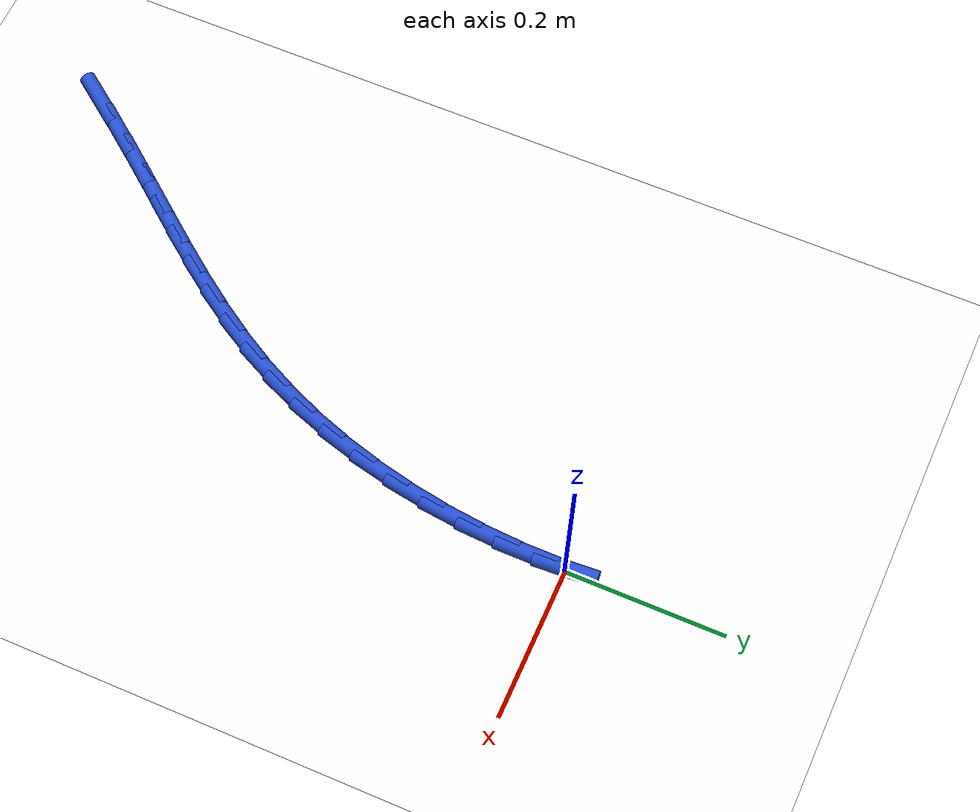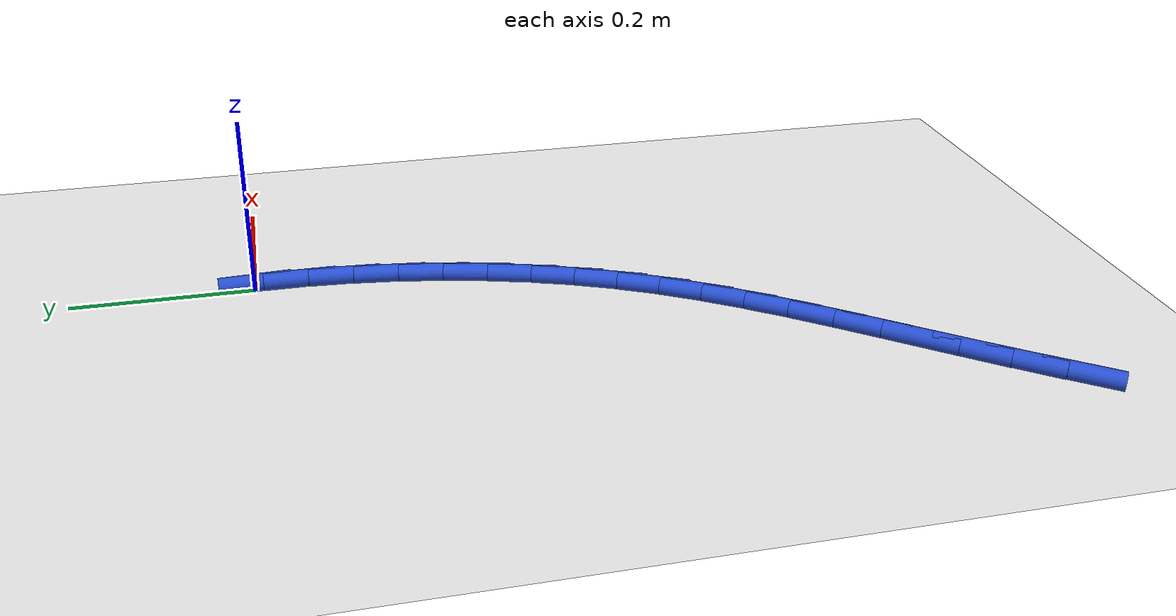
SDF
<sdf version="1.6">
 <world name="default">
  <model name="ground_plane">
   <static>1</static>
   <link name="link">
    <collision name="collision">
     <geometry><plane><normal>0 0 1</normal><size>100 100</size></plane></geometry>
     <surface><friction><ode><mu>100</mu><mu2>50</mu2></ode></friction></surface>
    </collision>
    <visual name="visual">
     <cast_shadows>0</cast_shadows>
     <geometry><plane><normal>0 0 1</normal><size>100 100</size></plane></geometry>
     <material>
      <script><uri>file://media/materials/scripts/gazebo.material</uri><name>Gazebo/WhiteGlow</name></script>
     </material>
    </visual>
   </link>
  </model>
  <model name="line">
   <link name="link_0">
    <pose>8.673617379884035e-18 -4.163336342344337e-17 0.01 0 1.57 -1.5116043628234455</pose>
    <collision name="collision">
     <geometry><cylinder><radius>0.01</radius><length>0.08</length></cylinder></geometry>
    </collision>
    <visual name="visual">
     <material>
      <script><name>Gazebo/Blue</name><uri>file://media/materials/scripts/gazebo.material</uri></script>
     </material>
     <geometry><cylinder><radius>0.01</radius><length>0.08</length></cylinder></geometry>
    </visual>
   </link>
   <link name="link_132">
    <pose>-0.369262028851694 -0.7934513996656396 0.01 0 1.57 0.920389124831512</pose>
    <collision name="collision">
     <geometry><cylinder><radius>0.01</radius><length>0.08</length></cylinder></geometry>
    </collision>
    <visual name="visual">
     <material>
      <script><name>Gazebo/Blue</name><uri>file://media/materials/scripts/gazebo.material</uri></script>
     </material>
     <geometry><cylinder><radius>0.01</radius><length>0.08</length></cylinder></geometry>
    </visual>
   </link>
   <link name="link_133">
    <pose>-0.33653186993569334 -0.7504333507343424 0.01 0 1.57 0.902610637089817</pose>
    <collision name="collision">
     <geometry><cylinder><radius>0.01</radius><length>0.08</length></cylinder></geometry>
    </collision>
    <visual name="visual">
     <material>
      <script><name>Gazebo/Blue</name><uri>file://media/materials/scripts/gazebo.material</uri></script>
     </material>
     <geometry><cylinder><radius>0.01</radius><length>0.08</length></cylinder></geometry>
    </visual>
   </link>
   <link name="link_134">
    <pose>-0.3038457256144382 -0.7090220697179975 0.01 0 1.57 0.8895682325272566</pose>
    <collision name="collision">
     <geometry><cylinder><radius>0.01</radius><length>0.08</length></cylinder></geometry>
    </collision>
    <visual name="visual">
     <material>
      <script><name>Gazebo/Blue</name><uri>file://media/materials/scripts/gazebo.material</uri></script>
     </material>
     <geometry><cylinder><radius>0.01</radius><length>0.08</length></cylinder></geometry>
    </visual>
   </link>
   <link name="link_135">
    <pose>-0.2714094233328335 -0.6690115614071257 0.01 0 1.57 0.88664101439225</pose>
    <collision name="collision">
     <geometry><cylinder><radius>0.01</radius><length>0.08</length></cylinder></geometry>
    </collision>
    <visual name="visual">
     <material>
      <script><name>Gazebo/Blue</name><uri>file://media/materials/scripts/gazebo.material</uri></script>
     </material>
     <geometry><cylinder><radius>0.01</radius><length>0.08</length></cylinder></geometry>
    </visual>
   </link>
   <link name="link_136">
    <pose>-0.2395366223675567 -0.6299305488986964 0.01 0 1.57 0.8945359287704264</pose>
    <collision name="collision">
     <geometry><cylinder><radius>0.01</radius><length>0.08</length></cylinder></geometry>
    </collision>
    <visual name="visual">
     <material>
      <script><name>Gazebo/Blue</name><uri>file://media/materials/scripts/gazebo.material</uri></script>
     </material>
     <geometry><cylinder><radius>0.01</radius><length>0.08</length></cylinder></geometry>
    </visual>
   </link>
   <link name="link_137">
    <pose>-0.20854133295663363 -0.5913068918746861 0.01 0 1.57 0.913770561776841</pose>
    <collision name="collision">
     <geometry><cylinder><radius>0.01</radius><length>0.08</length></cylinder></geometry>
    </collision>
    <visual name="visual">
     <material>
      <script><name>Gazebo/Blue</name><uri>file://media/materials/scripts/gazebo.material</uri></script>
     </material>
     <geometry><cylinder><radius>0.01</radius><length>0.08</length></cylinder></geometry>
    </visual>
   </link>
   <link name="link_138">
    <pose>-0.17873756533809004 -0.5526684500170712 0.01 0 1.57 0.9446225017790807</pose>
    <collision name="collision">
     <geometry><cylinder><radius>0.01</radius><length>0.08</length></cylinder></geometry>
    </collision>
    <visual name="visual">
     <material>
      <script><name>Gazebo/Blue</name><uri>file://media/materials/scripts/gazebo.material</uri></script>
     </material>
     <geometry><cylinder><radius>0.01</radius><length>0.08</length></cylinder></geometry>
    </visual>
   </link>
   <link name="link_139">
    <pose>-0.15043932974995053 -0.5135430830078263 0.01 0 1.57 0.9870242973070956</pose>
    <collision name="collision">
     <geometry><cylinder><radius>0.01</radius><length>0.08</length></cylinder></geometry>
    </collision>
    <visual name="visual">
     <material>
      <script><name>Gazebo/Blue</name><uri>file://media/materials/scripts/gazebo.material</uri></script>
     </material>
     <geometry><cylinder><radius>0.01</radius><length>0.08</length></cylinder></geometry>
    </visual>
   </link>
   <link name="link_140">
    <pose>-0.12396063643024112 -0.47345865052892816 0.01 0 1.57 1.0404302079260517</pose>
    <collision name="collision">
     <geometry><cylinder><radius>0.01</radius><length>0.08</length></cylinder></geometry>
    </collision>
    <visual name="visual">
     <material>
      <script><name>Gazebo/Blue</name><uri>file://media/materials/scripts/gazebo.material</uri></script>
     </material>
     <geometry><cylinder><radius>0.01</radius><length>0.08</length></cylinder></geometry>
    </visual>
   </link>
   <link name="link_141">
    <pose>-0.09961549561698643 -0.4319430122623517 0.01 0 1.57 1.103535152370989</pose>
    <collision name="collision">
     <geometry><cylinder><radius>0.01</radius><length>0.08</length></cylinder></geometry>
    </collision>
    <visual name="visual">
     <material>
      <script><name>Gazebo/Blue</name><uri>file://media/materials/scripts/gazebo.material</uri></script>
     </material>
     <geometry><cylinder><radius>0.01</radius><length>0.08</length></cylinder></geometry>
    </visual>
   </link>
   <link name="link_142">
    <pose>-0.07771455550613923 -0.3885339968647507 0.01 0 1.57 1.1694971855128655</pose>
    <collision name="collision">
     <geometry><cylinder><radius>0.01</radius><length>0.08</length></cylinder></geometry>
    </collision>
    <visual name="visual">
     <material>
      <script><name>Gazebo/Blue</name><uri>file://media/materials/scripts/gazebo.material</uri></script>
     </material>
     <geometry><cylinder><radius>0.01</radius><length>0.08</length></cylinder></geometry>
    </visual>
   </link>
   <link name="link_143">
    <pose>-0.05844758122482946 -0.34312786998609257 0.01 0 1.57 1.2317629349804864</pose>
    <collision name="collision">
     <geometry><cylinder><radius>0.01</radius><length>0.08</length></cylinder></geometry>
    </collision>
    <visual name="visual">
     <material>
      <script><name>Gazebo/Blue</name><uri>file://media/materials/scripts/gazebo.material</uri></script>
     </material>
     <geometry><cylinder><radius>0.01</radius><length>0.08</length></cylinder></geometry>
    </visual>
   </link>
   <link name="link_144">
    <pose>-0.04185276054488917 -0.29607034757584444 0.01 0 1.57 1.2908877467530224</pose>
    <collision name="collision">
     <geometry><cylinder><radius>0.01</radius><length>0.08</length></cylinder></geometry>
    </collision>
    <visual name="visual">
     <material>
      <script><name>Gazebo/Blue</name><uri>file://media/materials/scripts/gazebo.material</uri></script>
     </material>
     <geometry><cylinder><radius>0.01</radius><length>0.08</length></cylinder></geometry>
    </visual>
   </link>
   <link name="link_145">
    <pose>-0.02795868164321154 -0.24773560986702564 0.01 0 1.57 1.3478152128152356</pose>
    <collision name="collision">
     <geometry><cylinder><radius>0.01</radius><length>0.08</length></cylinder></geometry>
    </collision>
    <visual name="visual">
     <material>
      <script><name>Gazebo/Blue</name><uri>file://media/materials/scripts/gazebo.material</uri></script>
     </material>
     <geometry><cylinder><radius>0.01</radius><length>0.08</length></cylinder></geometry>
    </visual>
   </link>
   <link name="link_146">
    <pose>-0.016793932696688708 -0.19849783709265323 0.01 0 1.57 1.403451096592245</pose>
    <collision name="collision">
     <geometry><cylinder><radius>0.01</radius><length>0.08</length></cylinder></geometry>
    </collision>
    <visual name="visual">
     <material>
      <script><name>Gazebo/Blue</name><uri>file://media/materials/scripts/gazebo.material</uri></script>
     </material>
     <geometry><cylinder><radius>0.01</radius><length>0.08</length></cylinder></geometry>
    </visual>
   </link>
   <link name="link_147">
    <pose>-0.008387101882213534 -0.148731209485746 0.01 0 1.57 1.458684719250944</pose>
    <collision name="collision">
     <geometry><cylinder><radius>0.01</radius><length>0.08</length></cylinder></geometry>
    </collision>
    <visual name="visual">
     <material>
      <script><name>Gazebo/Blue</name><uri>file://media/materials/scripts/gazebo.material</uri></script>
     </material>
     <geometry><cylinder><radius>0.01</radius><length>0.08</length></cylinder></geometry>
    </visual>
   </link>
   <link name="link_148">
    <pose>-0.0027667773766786924 -0.0988099072793231 0.01 0 1.57 1.5144149260656428</pose>
    <collision name="collision">
     <geometry><cylinder><radius>0.01</radius><length>0.08</length></cylinder></geometry>
    </collision>
    <visual name="visual">
     <material>
      <script><name>Gazebo/Blue</name><uri>file://media/materials/scripts/gazebo.material</uri></script>
     </material>
     <geometry><cylinder><radius>0.01</radius><length>0.08</length></cylinder></geometry>
    </visual>
   </link>
   <link name="link_149">
    <pose>3.845264302339106e-05 -0.04910811070640107 0.01 0 1.57 -1.5700133067476671</pose>
    <collision name="collision">
     <geometry><cylinder><radius>0.01</radius><length>0.08</length></cylinder></geometry>
    </collision>
    <visual name="visual">
     <material>
      <script><name>Gazebo/Blue</name><uri>file://media/materials/scripts/gazebo.material</uri></script>
     </material>
     <geometry><cylinder><radius>0.01</radius><length>0.08</length></cylinder></geometry>
    </visual>
   </link>
  </model>
 </world>
</sdf>
